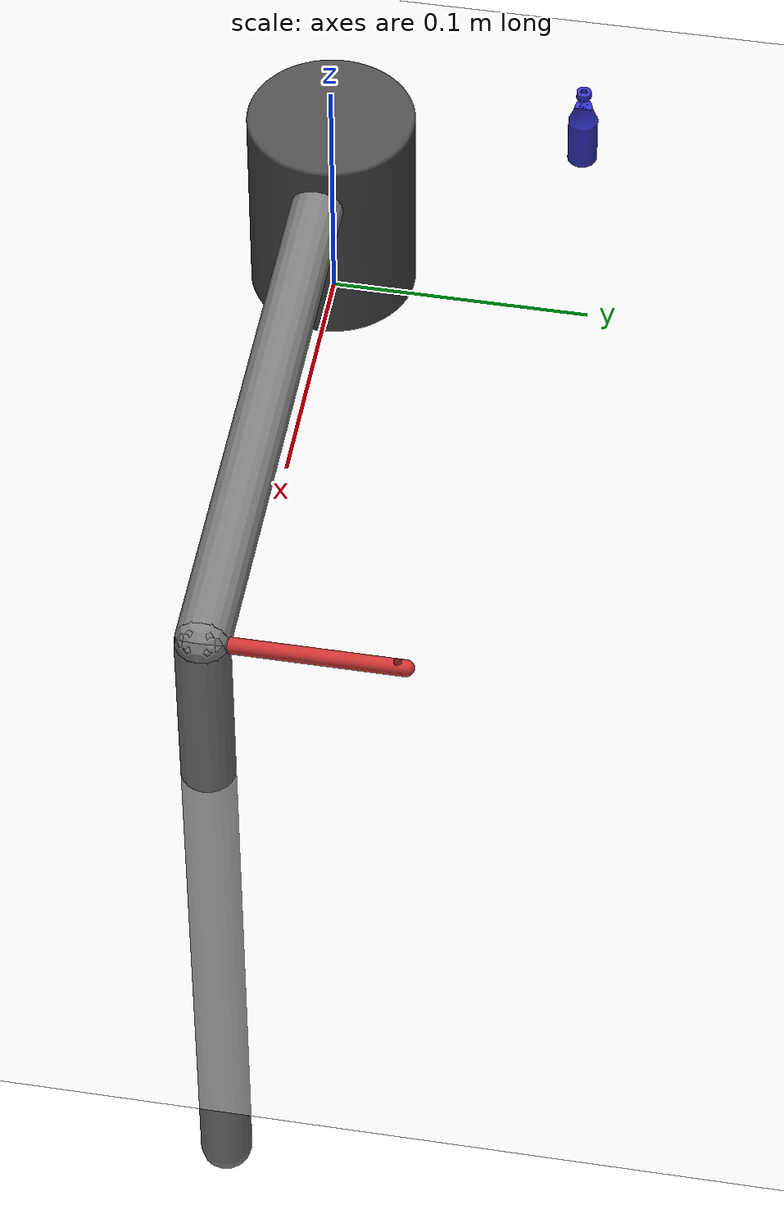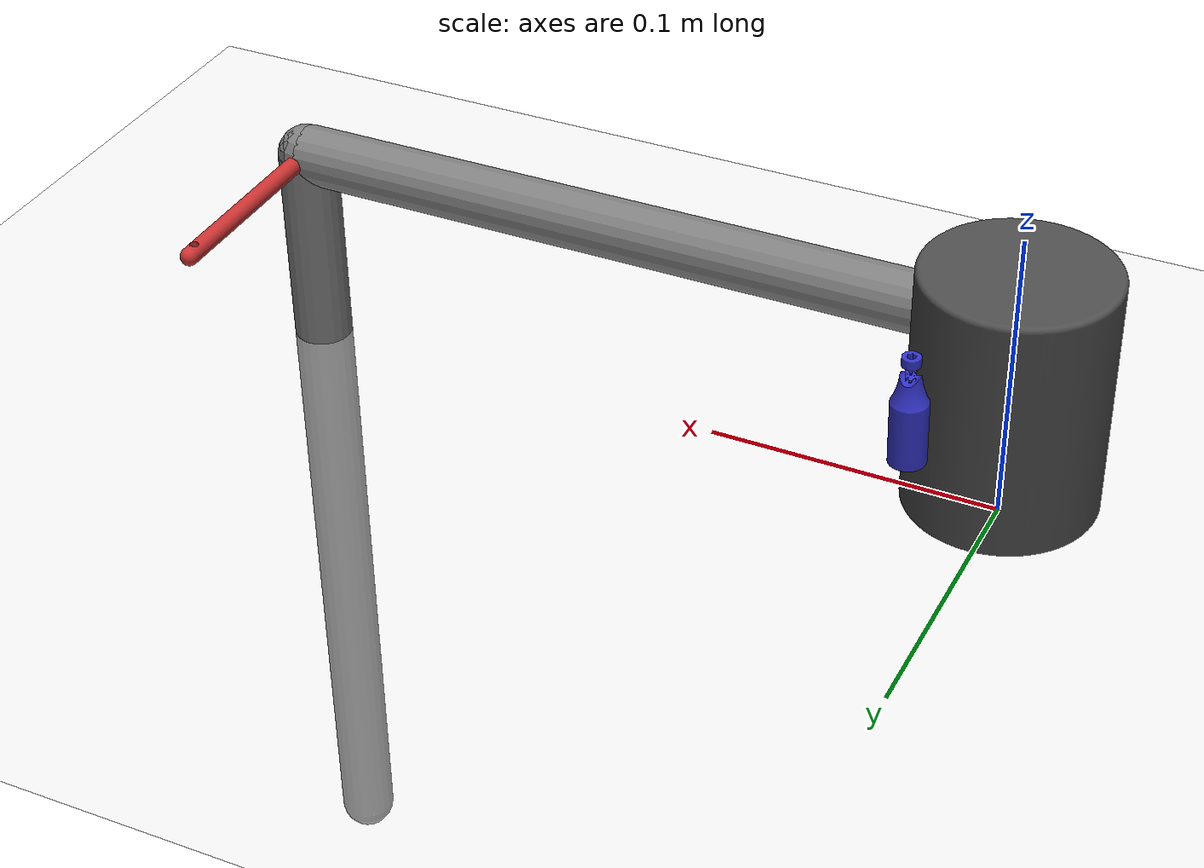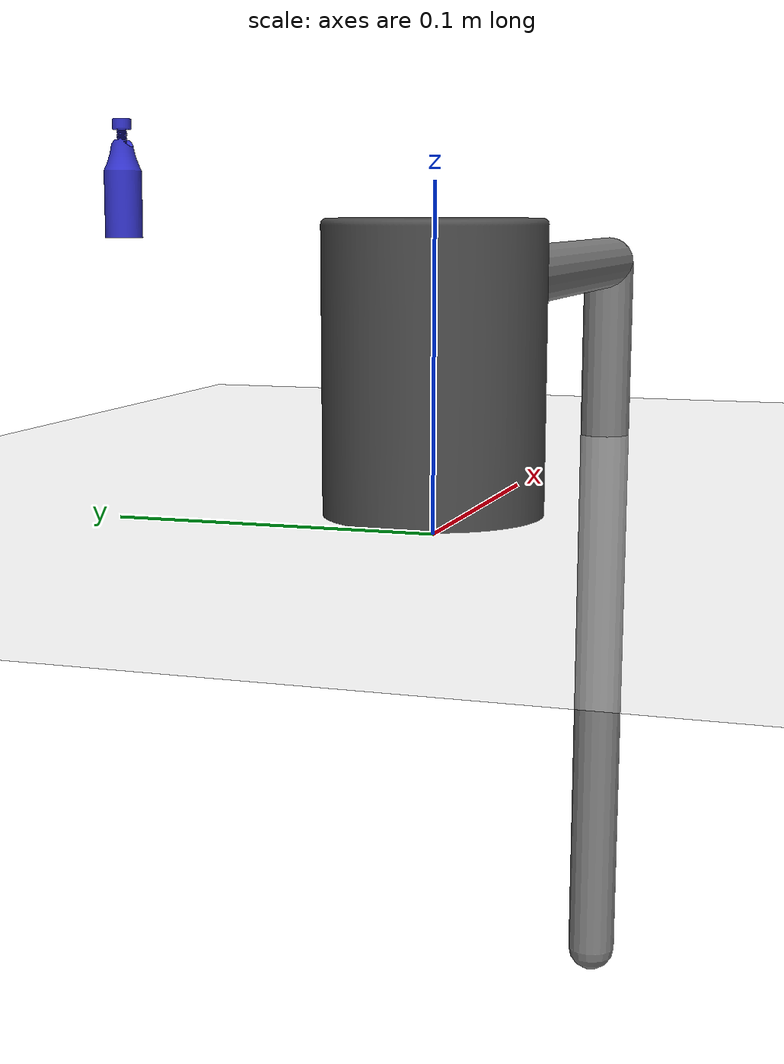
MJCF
<mujoco model="furuta_pendulum">

    <!-- Compiler and simulation options -->
    <compiler angle="radian" coordinate="local"/>
    <option timestep="0.002" gravity="0 0 -9.81" integrator="RK4"/>

    <!-- Defaults -->
    <default>
        <joint damping="0.01"/>
        <geom friction="0.5 0.5 0.5"/>
    </default>

    <!-- Mesh assets -->
    <asset>
        <mesh name="base_mesh" file="meshes/base.stl" scale="0.001 0.001 0.001"/>
        <mesh name="arm_mesh" file="meshes/arm.stl" scale="0.001 0.001 0.001"/>
        <mesh name="pendulum_mesh" file="meshes/pendulum.stl" scale="0.001 0.001 0.001"/>
    </asset>

    <!-- Keyframes -->
    <keyframe>
        <key name="down"
             qpos="0 0"
             qvel="0 0"/>
        <key name="upright"
             qpos="0 3.1416"
             qvel="0 0"/>
    </keyframe>

    <!-- World body -->
    <worldbody>
        <geom type="plane"
            size="5 5 0.1"
            rgba="0.9 0.9 0.9 1"
            contype="0"
            conaffinity="0"/>

        <light pos="1 1 2" dir="-1 -1 -2" diffuse="0.8 0.8 0.8"/>
        <light pos="-1 -1 3" dir="1 1 -3" diffuse="0.4 0.4 0.4"/>
        <!-- Base (fixed) -->
        <body name="base" pos="0 0 0">
            <geom type="mesh"
                  mesh="base_mesh"
                  rgba="0.3 0.3 0.3 1"/>

            <!-- Rotary arm -->
            <body name="arm" pos="0 0 0.07">

                <joint name="arm_joint"
                       type="hinge"
                       axis="0 0 1"
                       limited="true"
                       range="-6.283 6.283"/>

                <geom type="mesh"
                      mesh="arm_mesh"
                      rgba="0.2 0.2 0.8 1"/>

                <geom type="capsule"
                      fromto="0 0 0 0.25 0 0"
                      size="0.01"/>

                <inertial
                    pos="0.125 0 0"
                    mass="0.10"
                    diaginertia="0.002 0.002 0.0002"/>

                <!-- Pendulum -->
                <body name="pendulum" pos="0.25 0 0">

                    <joint name="pendulum_joint"
                           type="hinge"
                           axis="1 0 0"
                           limited="true"
                           range="-3.1416 3.1416"/>

                    <geom type="mesh"
                          mesh="pendulum_mesh"
                          rgba="0.8 0.2 0.2 1"/>

                    <geom type="capsule"
                          fromto="0 0 0 0 0 -0.3"
                          size="0.01"/>

                    <inertial
                        pos="0 0 -0.15"
                        mass="0.15"
                        diaginertia="0.0015 0.0015 0.0001"/>

                </body>
            </body>
        </body>
    </worldbody>

    <!-- Actuator -->
    <actuator>
        <motor joint="arm_joint"
               ctrlrange="-8 8"
               gear="1"/>
    </actuator>

    <!-- Sensors -->
    <sensor>
        <jointpos joint="arm_joint"/>
        <jointvel joint="arm_joint"/>
        <jointpos joint="pendulum_joint"/>
        <jointvel joint="pendulum_joint"/>
    </sensor>

</mujoco>
